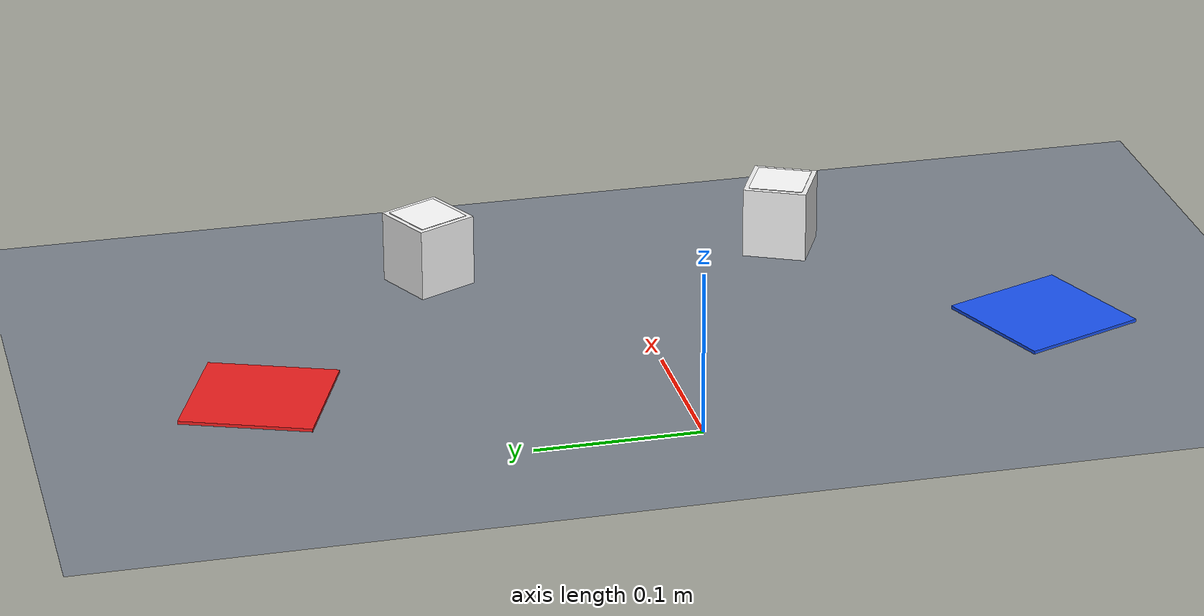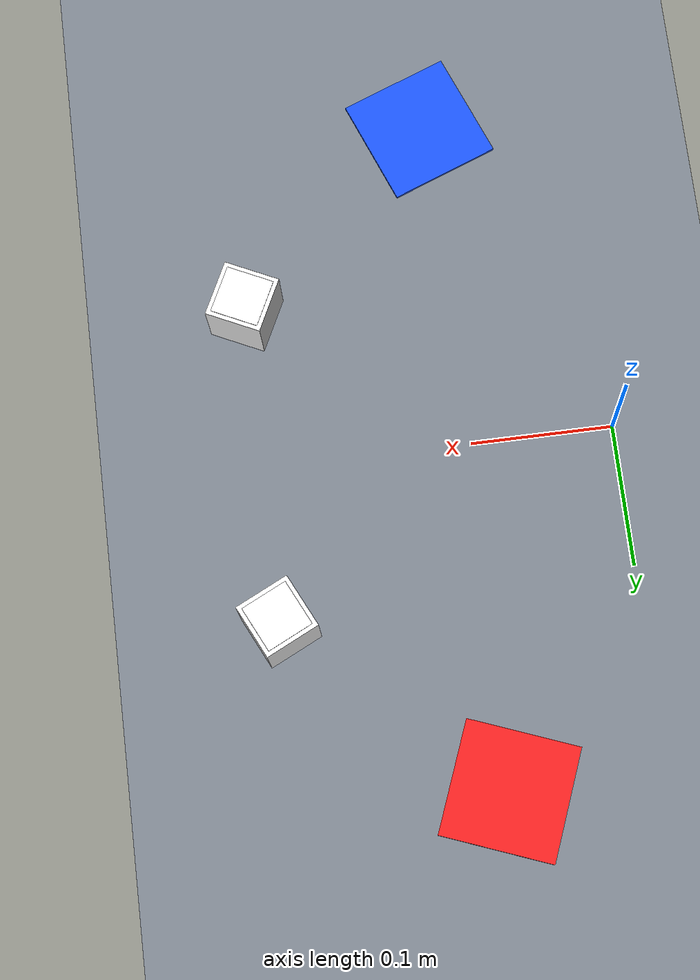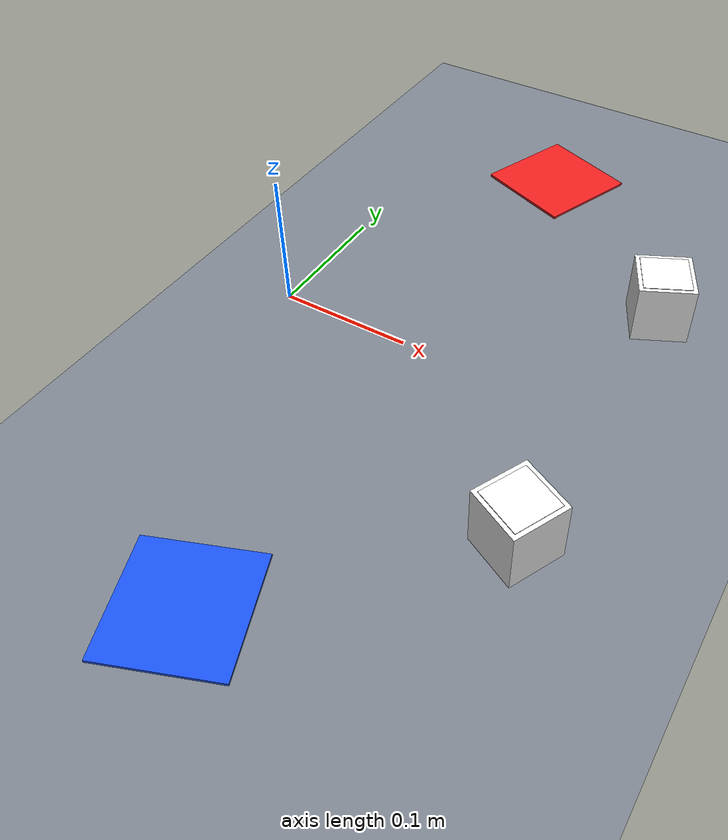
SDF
<?xml version="1.0"?>
<sdf version="1.10">
  <world name="aruco_sorting">
    <physics name="1ms" type="ignored">
      <max_step_size>0.002</max_step_size>
      <real_time_factor>1.0</real_time_factor>
      <real_time_update_rate>500</real_time_update_rate>
    </physics>

    <plugin filename="gz-sim-physics-system" name="gz::sim::systems::Physics"/>
    <plugin filename="gz-sim-user-commands-system" name="gz::sim::systems::UserCommands"/>
    <plugin filename="gz-sim-scene-broadcaster-system" name="gz::sim::systems::SceneBroadcaster"/>
    <plugin filename="gz-sim-sensors-system" name="gz::sim::systems::Sensors">
      <render_engine>ogre2</render_engine>
    </plugin>
    <plugin filename="gz-sim-contact-system" name="gz::sim::systems::Contact"/>

    <gravity>0 0 -9.81</gravity>
    <scene>
      <ambient>0.45 0.45 0.45 1</ambient>
      <background>0.68 0.73 0.80 1</background>
      <shadows>true</shadows>
    </scene>
    <gui>
      <camera name="user_camera">
        <pose>0.72 -0.72 0.58 0 0.48 2.35</pose>
      </camera>
    </gui>

    <light name="sun" type="directional">
      <pose>0 0 5 0 0 0</pose>
      <cast_shadows>true</cast_shadows>
      <intensity>1.0</intensity>
      <direction>-0.5 0.3 -0.9</direction>
      <diffuse>0.85 0.85 0.85 1</diffuse>
      <specular>0.25 0.25 0.25 1</specular>
    </light>

    <model name="ground_plane">
      <static>true</static>
      <link name="ground_link">
        <collision name="ground_collision">
          <geometry><plane><normal>0 0 1</normal><size>2 2</size></plane></geometry>
        </collision>
        <visual name="ground_visual">
          <geometry><plane><normal>0 0 1</normal><size>2 2</size></plane></geometry>
          <material>
            <ambient>0.38 0.41 0.45 1</ambient>
            <diffuse>0.48 0.51 0.55 1</diffuse>
          </material>
        </visual>
      </link>
    </model>

    <!-- OpenMANIPULATOR-X의 place 자세에서 end_effector가 오는 위치 -->
    <model name="destination_A">
      <static>true</static>
      <pose>0.106 0.242 0.001 0 0 1.20</pose>
      <link name="plate_link">
        <visual name="plate_visual">
          <geometry><box><size>0.08 0.08 0.002</size></box></geometry>
          <material>
            <ambient>0.72 0.08 0.08 1</ambient>
            <diffuse>0.92 0.12 0.12 1</diffuse>
          </material>
        </visual>
      </link>
    </model>

    <model name="destination_B">
      <static>true</static>
      <pose>0.106 -0.242 0.001 0 0 -1.20</pose>
      <link name="plate_link">
        <visual name="plate_visual">
          <geometry><box><size>0.08 0.08 0.002</size></box></geometry>
          <material>
            <ambient>0.06 0.22 0.72 1</ambient>
            <diffuse>0.10 0.32 0.94 1</diffuse>
          </material>
        </visual>
      </link>
    </model>

    <!-- pick 자세의 end_effector 좌표와 일치시킨 두 ArUco 박스 -->
    <include>
      <uri>model://aruco_box_0</uri>
      <name>marker0_box</name>
      <pose>0.246 0.113 0.0225 0 0 0.45</pose>
    </include>
    <include>
      <uri>model://aruco_box_1</uri>
      <name>marker1_box</name>
      <pose>0.246 -0.113 0.0225 0 0 -0.45</pose>
    </include>
  </world>
</sdf>

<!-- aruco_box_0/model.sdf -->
<sdf version="1.10">
  <model name="aruco_box_0">
    <static>false</static>
    <link name="box_link">
      <inertial>
        <mass>0.05</mass>
        <inertia>
          <ixx>0.000017</ixx><iyy>0.000017</iyy><izz>0.000017</izz>
          <ixy>0</ixy><ixz>0</ixz><iyz>0</iyz>
        </inertia>
      </inertial>
      <collision name="box_collision">
        <geometry><box><size>0.028 0.028 0.040</size></box></geometry>
        <surface><friction><ode><mu>2.0</mu><mu2>2.0</mu2></ode></friction></surface>
      </collision>
      <visual name="box_visual">
        <geometry><box><size>0.040 0.040 0.045</size></box></geometry>
        <material><ambient>0.95 0.95 0.95 1</ambient><diffuse>0.95 0.95 0.95 1</diffuse></material>
      </visual>
      <visual name="marker_visual">
        <pose>0 0 0.0227 0 0 0</pose>
        <geometry><box><size>0.034 0.034 0.0004</size></box></geometry>
        <material>
          <ambient>1 1 1 1</ambient><diffuse>1 1 1 1</diffuse>
          <pbr><metal><albedo_map>materials/textures/aruco_0.png</albedo_map><roughness>1</roughness><metalness>0</metalness></metal></pbr>
        </material>
      </visual>
    </link>
  </model>
</sdf>

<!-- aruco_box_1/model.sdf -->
<sdf version="1.10">
  <model name="aruco_box_1">
    <static>false</static>
    <link name="box_link">
      <inertial>
        <mass>0.05</mass>
        <inertia>
          <ixx>0.000017</ixx><iyy>0.000017</iyy><izz>0.000017</izz>
          <ixy>0</ixy><ixz>0</ixz><iyz>0</iyz>
        </inertia>
      </inertial>
      <collision name="box_collision">
        <geometry><box><size>0.028 0.028 0.040</size></box></geometry>
        <surface><friction><ode><mu>2.0</mu><mu2>2.0</mu2></ode></friction></surface>
      </collision>
      <visual name="box_visual">
        <geometry><box><size>0.040 0.040 0.045</size></box></geometry>
        <material><ambient>0.95 0.95 0.95 1</ambient><diffuse>0.95 0.95 0.95 1</diffuse></material>
      </visual>
      <visual name="marker_visual">
        <pose>0 0 0.0227 0 0 0</pose>
        <geometry><box><size>0.034 0.034 0.0004</size></box></geometry>
        <material>
          <ambient>1 1 1 1</ambient><diffuse>1 1 1 1</diffuse>
          <pbr><metal><albedo_map>materials/textures/aruco_1.png</albedo_map><roughness>1</roughness><metalness>0</metalness></metal></pbr>
        </material>
      </visual>
    </link>
  </model>
</sdf>
